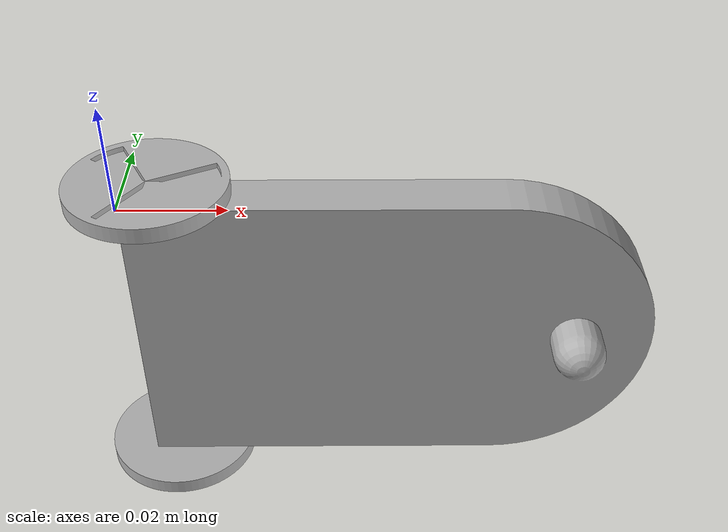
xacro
<?xml version="1.0" ?>
<robot name="Basic_Robot" xmlns:xacro="http://www.ros.org/wiki/xacro">

<xacro:include filename="$(find Basic_Robot_description)/urdf/materials.xacro" />
<xacro:include filename="$(find Basic_Robot_description)/urdf/Basic_Robot.trans" />
<xacro:include filename="$(find Basic_Robot_description)/urdf/Basic_Robot.gazebo" />
<link name="base_link">
  <inertial>
    <origin rpy="0 0 0" xyz="0.047517484701943946 0.004858805619815502 -0.0300059480762529"/>
    <mass value="0.4424914005445932"/>
    <inertia ixx="0.000128" ixy="2e-06" ixz="-0.0" iyy="0.00046" iyz="0.0" izz="0.000341"/>
  </inertial>
  <visual>
    <origin rpy="0 0 0" xyz="0 0 0"/>
    <geometry>
      <mesh filename="package://Basic_Robot_description/meshes/base_link.stl" scale="0.001 0.001 0.001"/>
    </geometry>
    <material name="silver"/>
  </visual>
  <collision>
    <origin rpy="0 0 0" xyz="0 0 0"/>
    <geometry>
      <mesh filename="package://Basic_Robot_description/meshes/base_link.stl" scale="0.001 0.001 0.001"/>
    </geometry>
  </collision>
</link>

<link name="right_wheel_1">
  <inertial>
    <origin rpy="0 0 0" xyz="0.005000000000000007 4.336808689942018e-18 -0.001427613941018771"/>
    <mass value="0.015522874373267303"/>
    <inertia ixx="1e-06" ixy="0.0" ixz="-0.0" iyy="1e-06" iyz="0.0" izz="2e-06"/>
  </inertial>
  <visual>
    <origin rpy="0 0 0" xyz="-0.0 -0.005 0.06"/>
    <geometry>
      <mesh filename="package://Basic_Robot_description/meshes/right_wheel_1.stl" scale="0.001 0.001 0.001"/>
    </geometry>
    <material name="silver"/>
  </visual>
  <collision>
    <origin rpy="0 0 0" xyz="-0.0 -0.005 0.06"/>
    <geometry>
      <mesh filename="package://Basic_Robot_description/meshes/right_wheel_1.stl" scale="0.001 0.001 0.001"/>
    </geometry>
  </collision>
</link>

<link name="left_wheel_1">
  <inertial>
    <origin rpy="0 0 0" xyz="0.004999999999999999 0.0 0.0014276139410187671"/>
    <mass value="0.015522874373267314"/>
    <inertia ixx="1e-06" ixy="-0.0" ixz="-0.0" iyy="1e-06" iyz="0.0" izz="2e-06"/>
  </inertial>
  <visual>
    <origin rpy="0 0 0" xyz="-0.0 -0.005 -0.0"/>
    <geometry>
      <mesh filename="package://Basic_Robot_description/meshes/left_wheel_1.stl" scale="0.001 0.001 0.001"/>
    </geometry>
    <material name="silver"/>
  </visual>
  <collision>
    <origin rpy="0 0 0" xyz="-0.0 -0.005 -0.0"/>
    <geometry>
      <mesh filename="package://Basic_Robot_description/meshes/left_wheel_1.stl" scale="0.001 0.001 0.001"/>
    </geometry>
  </collision>
</link>

<joint name="Rev1" type="continuous">
  <origin rpy="0 0 0" xyz="0.0 0.005 -0.06"/>
  <parent link="base_link"/>
  <child link="right_wheel_1"/>
  <axis xyz="0.0 0.0 -1.0"/>
</joint>

<joint name="Rev2" type="continuous">
  <origin rpy="0 0 0" xyz="0.0 0.005 0.0"/>
  <parent link="base_link"/>
  <child link="left_wheel_1"/>
  <axis xyz="0.0 0.0 1.0"/>
</joint>

</robot>

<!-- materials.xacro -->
<robot name="Basic_Robot" xmlns:xacro="http://www.ros.org/wiki/xacro" >

<material name="silver">
  <color rgba="0.700 0.700 0.700 1.000"/>
</material>

</robot>

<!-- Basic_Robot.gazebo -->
<robot name="Basic_Robot" xmlns:xacro="http://www.ros.org/wiki/xacro" >

<xacro:property name="body_color" value="Gazebo/Silver" />

<gazebo>
  <plugin filename="libgazebo_ros_control.so" name="control"/>
</gazebo>
<gazebo reference="base_link">
  <material>${body_color}</material>
  <mu1>0.2</mu1>
  <mu2>0.2</mu2>
  <selfCollide>true</selfCollide>
  <gravity>true</gravity>
</gazebo>

<gazebo reference="right_wheel_1">
  <material>${body_color}</material>
  <mu1>0.2</mu1>
  <mu2>0.2</mu2>
  <selfCollide>true</selfCollide>
</gazebo>

<gazebo reference="left_wheel_1">
  <material>${body_color}</material>
  <mu1>0.2</mu1>
  <mu2>0.2</mu2>
  <selfCollide>true</selfCollide>
</gazebo>

</robot>
